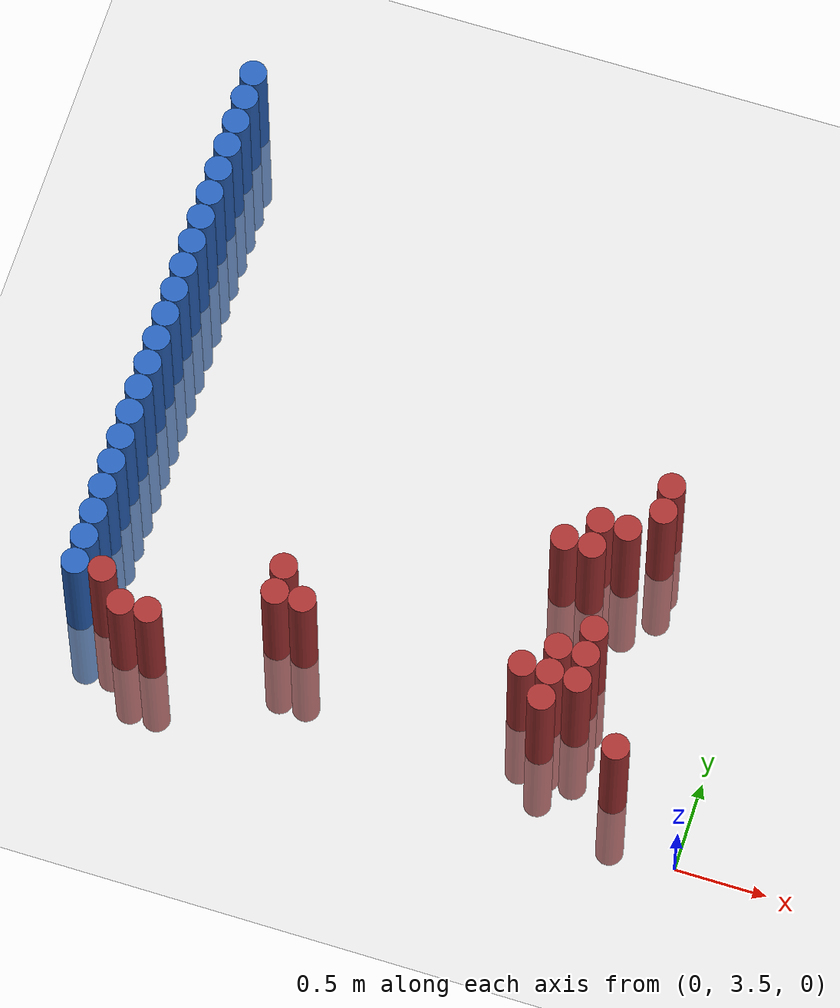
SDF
<sdf version="1.6">
 <world name="default">
  <model name="ground_plane">
   <static>1</static>
   <link name="link">
    <collision name="collision">
     <geometry><plane><normal>0 0 1</normal><size>100 100</size></plane></geometry>
     <surface><friction><ode><mu>100</mu><mu2>50</mu2></ode></friction></surface>
    </collision>
    <visual name="visual">
     <cast_shadows>0</cast_shadows>
     <geometry><plane><normal>0 0 1</normal><size>100 100</size></plane></geometry>
     <material>
      <script><uri>file://media/materials/scripts/gazebo.material</uri><name>Gazebo/Grey</name></script>
     </material>
    </visual>
   </link>
  </model>
  <model name="unit_cylinder_167">
   <static>1</static>
   <pose>-3.425000 3.925000 0.000000 0.000000 0.000000 0.000000</pose>
   <link name="link">
    <inertial>
     <mass>1</mass>
     <inertia><ixx>0.145833</ixx><ixy>0</ixy><ixz>0</ixz><iyy>0.145833</iyy><iyz>0</iyz><izz>0.125</izz></inertia>
    </inertial>
    <collision name="collision">
     <geometry><cylinder><radius>0.075000</radius><length>1.5</length></cylinder></geometry>
    </collision>
    <visual name="visual">
     <geometry><cylinder><radius>0.075000</radius><length>1.5</length></cylinder></geometry>
     <material>
      <ambient>0.152000 0.379000 0.720000 1</ambient>
      <diffuse>0.152000 0.379000 0.720000 1</diffuse>
     </material>
     <material>
      <script><name>Gazebo/Grey</name><uri>file://media/materials/scripts/gazebo.material</uri></script>
     </material>
    </visual>
   </link>
  </model>
  <model name="unit_cylinder_169">
   <static>1</static>
   <pose>-3.425000 4.075000 0.000000 0.000000 0.000000 0.000000</pose>
   <link name="link">
    <inertial>
     <mass>1</mass>
     <inertia><ixx>0.145833</ixx><ixy>0</ixy><ixz>0</ixz><iyy>0.145833</iyy><iyz>0</iyz><izz>0.125</izz></inertia>
    </inertial>
    <collision name="collision">
     <geometry><cylinder><radius>0.075000</radius><length>1.5</length></cylinder></geometry>
    </collision>
    <visual name="visual">
     <geometry><cylinder><radius>0.075000</radius><length>1.5</length></cylinder></geometry>
     <material>
      <ambient>0.152000 0.379000 0.720000 1</ambient>
      <diffuse>0.152000 0.379000 0.720000 1</diffuse>
     </material>
     <material>
      <script><name>Gazebo/Grey</name><uri>file://media/materials/scripts/gazebo.material</uri></script>
     </material>
    </visual>
   </link>
  </model>
  <model name="unit_cylinder_171">
   <static>1</static>
   <pose>-3.425000 4.225000 0.000000 0.000000 0.000000 0.000000</pose>
   <link name="link">
    <inertial>
     <mass>1</mass>
     <inertia><ixx>0.145833</ixx><ixy>0</ixy><ixz>0</ixz><iyy>0.145833</iyy><iyz>0</iyz><izz>0.125</izz></inertia>
    </inertial>
    <collision name="collision">
     <geometry><cylinder><radius>0.075000</radius><length>1.5</length></cylinder></geometry>
    </collision>
    <visual name="visual">
     <geometry><cylinder><radius>0.075000</radius><length>1.5</length></cylinder></geometry>
     <material>
      <ambient>0.152000 0.379000 0.720000 1</ambient>
      <diffuse>0.152000 0.379000 0.720000 1</diffuse>
     </material>
     <material>
      <script><name>Gazebo/Grey</name><uri>file://media/materials/scripts/gazebo.material</uri></script>
     </material>
    </visual>
   </link>
  </model>
  <model name="unit_cylinder_173">
   <static>1</static>
   <pose>-3.425000 4.375000 0.000000 0.000000 0.000000 0.000000</pose>
   <link name="link">
    <inertial>
     <mass>1</mass>
     <inertia><ixx>0.145833</ixx><ixy>0</ixy><ixz>0</ixz><iyy>0.145833</iyy><iyz>0</iyz><izz>0.125</izz></inertia>
    </inertial>
    <collision name="collision">
     <geometry><cylinder><radius>0.075000</radius><length>1.5</length></cylinder></geometry>
    </collision>
    <visual name="visual">
     <geometry><cylinder><radius>0.075000</radius><length>1.5</length></cylinder></geometry>
     <material>
      <ambient>0.152000 0.379000 0.720000 1</ambient>
      <diffuse>0.152000 0.379000 0.720000 1</diffuse>
     </material>
     <material>
      <script><name>Gazebo/Grey</name><uri>file://media/materials/scripts/gazebo.material</uri></script>
     </material>
    </visual>
   </link>
  </model>
  <model name="unit_cylinder_175">
   <static>1</static>
   <pose>-3.425000 4.525000 0.000000 0.000000 0.000000 0.000000</pose>
   <link name="link">
    <inertial>
     <mass>1</mass>
     <inertia><ixx>0.145833</ixx><ixy>0</ixy><ixz>0</ixz><iyy>0.145833</iyy><iyz>0</iyz><izz>0.125</izz></inertia>
    </inertial>
    <collision name="collision">
     <geometry><cylinder><radius>0.075000</radius><length>1.5</length></cylinder></geometry>
    </collision>
    <visual name="visual">
     <geometry><cylinder><radius>0.075000</radius><length>1.5</length></cylinder></geometry>
     <material>
      <ambient>0.152000 0.379000 0.720000 1</ambient>
      <diffuse>0.152000 0.379000 0.720000 1</diffuse>
     </material>
     <material>
      <script><name>Gazebo/Grey</name><uri>file://media/materials/scripts/gazebo.material</uri></script>
     </material>
    </visual>
   </link>
  </model>
  <model name="unit_cylinder_177">
   <static>1</static>
   <pose>-3.425000 4.675000 0.000000 0.000000 0.000000 0.000000</pose>
   <link name="link">
    <inertial>
     <mass>1</mass>
     <inertia><ixx>0.145833</ixx><ixy>0</ixy><ixz>0</ixz><iyy>0.145833</iyy><iyz>0</iyz><izz>0.125</izz></inertia>
    </inertial>
    <collision name="collision">
     <geometry><cylinder><radius>0.075000</radius><length>1.5</length></cylinder></geometry>
    </collision>
    <visual name="visual">
     <geometry><cylinder><radius>0.075000</radius><length>1.5</length></cylinder></geometry>
     <material>
      <ambient>0.152000 0.379000 0.720000 1</ambient>
      <diffuse>0.152000 0.379000 0.720000 1</diffuse>
     </material>
     <material>
      <script><name>Gazebo/Grey</name><uri>file://media/materials/scripts/gazebo.material</uri></script>
     </material>
    </visual>
   </link>
  </model>
  <model name="unit_cylinder_179">
   <static>1</static>
   <pose>-3.425000 4.825000 0.000000 0.000000 0.000000 0.000000</pose>
   <link name="link">
    <inertial>
     <mass>1</mass>
     <inertia><ixx>0.145833</ixx><ixy>0</ixy><ixz>0</ixz><iyy>0.145833</iyy><iyz>0</iyz><izz>0.125</izz></inertia>
    </inertial>
    <collision name="collision">
     <geometry><cylinder><radius>0.075000</radius><length>1.5</length></cylinder></geometry>
    </collision>
    <visual name="visual">
     <geometry><cylinder><radius>0.075000</radius><length>1.5</length></cylinder></geometry>
     <material>
      <ambient>0.152000 0.379000 0.720000 1</ambient>
      <diffuse>0.152000 0.379000 0.720000 1</diffuse>
     </material>
     <material>
      <script><name>Gazebo/Grey</name><uri>file://media/materials/scripts/gazebo.material</uri></script>
     </material>
    </visual>
   </link>
  </model>
  <model name="unit_cylinder_181">
   <static>1</static>
   <pose>-3.425000 4.975000 0.000000 0.000000 0.000000 0.000000</pose>
   <link name="link">
    <inertial>
     <mass>1</mass>
     <inertia><ixx>0.145833</ixx><ixy>0</ixy><ixz>0</ixz><iyy>0.145833</iyy><iyz>0</iyz><izz>0.125</izz></inertia>
    </inertial>
    <collision name="collision">
     <geometry><cylinder><radius>0.075000</radius><length>1.5</length></cylinder></geometry>
    </collision>
    <visual name="visual">
     <geometry><cylinder><radius>0.075000</radius><length>1.5</length></cylinder></geometry>
     <material>
      <ambient>0.152000 0.379000 0.720000 1</ambient>
      <diffuse>0.152000 0.379000 0.720000 1</diffuse>
     </material>
     <material>
      <script><name>Gazebo/Grey</name><uri>file://media/materials/scripts/gazebo.material</uri></script>
     </material>
    </visual>
   </link>
  </model>
  <model name="unit_cylinder_183">
   <static>1</static>
   <pose>-3.425000 5.125000 0.000000 0.000000 0.000000 0.000000</pose>
   <link name="link">
    <inertial>
     <mass>1</mass>
     <inertia><ixx>0.145833</ixx><ixy>0</ixy><ixz>0</ixz><iyy>0.145833</iyy><iyz>0</iyz><izz>0.125</izz></inertia>
    </inertial>
    <collision name="collision">
     <geometry><cylinder><radius>0.075000</radius><length>1.5</length></cylinder></geometry>
    </collision>
    <visual name="visual">
     <geometry><cylinder><radius>0.075000</radius><length>1.5</length></cylinder></geometry>
     <material>
      <ambient>0.152000 0.379000 0.720000 1</ambient>
      <diffuse>0.152000 0.379000 0.720000 1</diffuse>
     </material>
     <material>
      <script><name>Gazebo/Grey</name><uri>file://media/materials/scripts/gazebo.material</uri></script>
     </material>
    </visual>
   </link>
  </model>
  <model name="unit_cylinder_185">
   <static>1</static>
   <pose>-3.425000 5.275000 0.000000 0.000000 0.000000 0.000000</pose>
   <link name="link">
    <inertial>
     <mass>1</mass>
     <inertia><ixx>0.145833</ixx><ixy>0</ixy><ixz>0</ixz><iyy>0.145833</iyy><iyz>0</iyz><izz>0.125</izz></inertia>
    </inertial>
    <collision name="collision">
     <geometry><cylinder><radius>0.075000</radius><length>1.5</length></cylinder></geometry>
    </collision>
    <visual name="visual">
     <geometry><cylinder><radius>0.075000</radius><length>1.5</length></cylinder></geometry>
     <material>
      <ambient>0.152000 0.379000 0.720000 1</ambient>
      <diffuse>0.152000 0.379000 0.720000 1</diffuse>
     </material>
     <material>
      <script><name>Gazebo/Grey</name><uri>file://media/materials/scripts/gazebo.material</uri></script>
     </material>
    </visual>
   </link>
  </model>
  <model name="unit_cylinder_187">
   <static>1</static>
   <pose>-3.425000 5.425000 0.000000 0.000000 0.000000 0.000000</pose>
   <link name="link">
    <inertial>
     <mass>1</mass>
     <inertia><ixx>0.145833</ixx><ixy>0</ixy><ixz>0</ixz><iyy>0.145833</iyy><iyz>0</iyz><izz>0.125</izz></inertia>
    </inertial>
    <collision name="collision">
     <geometry><cylinder><radius>0.075000</radius><length>1.5</length></cylinder></geometry>
    </collision>
    <visual name="visual">
     <geometry><cylinder><radius>0.075000</radius><length>1.5</length></cylinder></geometry>
     <material>
      <ambient>0.152000 0.379000 0.720000 1</ambient>
      <diffuse>0.152000 0.379000 0.720000 1</diffuse>
     </material>
     <material>
      <script><name>Gazebo/Grey</name><uri>file://media/materials/scripts/gazebo.material</uri></script>
     </material>
    </visual>
   </link>
  </model>
  <model name="unit_cylinder_189">
   <static>1</static>
   <pose>-3.425000 5.575000 0.000000 0.000000 0.000000 0.000000</pose>
   <link name="link">
    <inertial>
     <mass>1</mass>
     <inertia><ixx>0.145833</ixx><ixy>0</ixy><ixz>0</ixz><iyy>0.145833</iyy><iyz>0</iyz><izz>0.125</izz></inertia>
    </inertial>
    <collision name="collision">
     <geometry><cylinder><radius>0.075000</radius><length>1.5</length></cylinder></geometry>
    </collision>
    <visual name="visual">
     <geometry><cylinder><radius>0.075000</radius><length>1.5</length></cylinder></geometry>
     <material>
      <ambient>0.152000 0.379000 0.720000 1</ambient>
      <diffuse>0.152000 0.379000 0.720000 1</diffuse>
     </material>
     <material>
      <script><name>Gazebo/Grey</name><uri>file://media/materials/scripts/gazebo.material</uri></script>
     </material>
    </visual>
   </link>
  </model>
  <model name="unit_cylinder_191">
   <static>1</static>
   <pose>-3.425000 5.725000 0.000000 0.000000 0.000000 0.000000</pose>
   <link name="link">
    <inertial>
     <mass>1</mass>
     <inertia><ixx>0.145833</ixx><ixy>0</ixy><ixz>0</ixz><iyy>0.145833</iyy><iyz>0</iyz><izz>0.125</izz></inertia>
    </inertial>
    <collision name="collision">
     <geometry><cylinder><radius>0.075000</radius><length>1.5</length></cylinder></geometry>
    </collision>
    <visual name="visual">
     <geometry><cylinder><radius>0.075000</radius><length>1.5</length></cylinder></geometry>
     <material>
      <ambient>0.152000 0.379000 0.720000 1</ambient>
      <diffuse>0.152000 0.379000 0.720000 1</diffuse>
     </material>
     <material>
      <script><name>Gazebo/Grey</name><uri>file://media/materials/scripts/gazebo.material</uri></script>
     </material>
    </visual>
   </link>
  </model>
  <model name="unit_cylinder_193">
   <static>1</static>
   <pose>-3.425000 5.875000 0.000000 0.000000 0.000000 0.000000</pose>
   <link name="link">
    <inertial>
     <mass>1</mass>
     <inertia><ixx>0.145833</ixx><ixy>0</ixy><ixz>0</ixz><iyy>0.145833</iyy><iyz>0</iyz><izz>0.125</izz></inertia>
    </inertial>
    <collision name="collision">
     <geometry><cylinder><radius>0.075000</radius><length>1.5</length></cylinder></geometry>
    </collision>
    <visual name="visual">
     <geometry><cylinder><radius>0.075000</radius><length>1.5</length></cylinder></geometry>
     <material>
      <ambient>0.152000 0.379000 0.720000 1</ambient>
      <diffuse>0.152000 0.379000 0.720000 1</diffuse>
     </material>
     <material>
      <script><name>Gazebo/Grey</name><uri>file://media/materials/scripts/gazebo.material</uri></script>
     </material>
    </visual>
   </link>
  </model>
  <model name="unit_cylinder_195">
   <static>1</static>
   <pose>-3.425000 6.025000 0.000000 0.000000 0.000000 0.000000</pose>
   <link name="link">
    <inertial>
     <mass>1</mass>
     <inertia><ixx>0.145833</ixx><ixy>0</ixy><ixz>0</ixz><iyy>0.145833</iyy><iyz>0</iyz><izz>0.125</izz></inertia>
    </inertial>
    <collision name="collision">
     <geometry><cylinder><radius>0.075000</radius><length>1.5</length></cylinder></geometry>
    </collision>
    <visual name="visual">
     <geometry><cylinder><radius>0.075000</radius><length>1.5</length></cylinder></geometry>
     <material>
      <ambient>0.152000 0.379000 0.720000 1</ambient>
      <diffuse>0.152000 0.379000 0.720000 1</diffuse>
     </material>
     <material>
      <script><name>Gazebo/Grey</name><uri>file://media/materials/scripts/gazebo.material</uri></script>
     </material>
    </visual>
   </link>
  </model>
  <model name="unit_cylinder_197">
   <static>1</static>
   <pose>-3.425000 6.175000 0.000000 0.000000 0.000000 0.000000</pose>
   <link name="link">
    <inertial>
     <mass>1</mass>
     <inertia><ixx>0.145833</ixx><ixy>0</ixy><ixz>0</ixz><iyy>0.145833</iyy><iyz>0</iyz><izz>0.125</izz></inertia>
    </inertial>
    <collision name="collision">
     <geometry><cylinder><radius>0.075000</radius><length>1.5</length></cylinder></geometry>
    </collision>
    <visual name="visual">
     <geometry><cylinder><radius>0.075000</radius><length>1.5</length></cylinder></geometry>
     <material>
      <ambient>0.152000 0.379000 0.720000 1</ambient>
      <diffuse>0.152000 0.379000 0.720000 1</diffuse>
     </material>
     <material>
      <script><name>Gazebo/Grey</name><uri>file://media/materials/scripts/gazebo.material</uri></script>
     </material>
    </visual>
   </link>
  </model>
  <model name="unit_cylinder_199">
   <static>1</static>
   <pose>-3.425000 6.325000 0.000000 0.000000 0.000000 0.000000</pose>
   <link name="link">
    <inertial>
     <mass>1</mass>
     <inertia><ixx>0.145833</ixx><ixy>0</ixy><ixz>0</ixz><iyy>0.145833</iyy><iyz>0</iyz><izz>0.125</izz></inertia>
    </inertial>
    <collision name="collision">
     <geometry><cylinder><radius>0.075000</radius><length>1.5</length></cylinder></geometry>
    </collision>
    <visual name="visual">
     <geometry><cylinder><radius>0.075000</radius><length>1.5</length></cylinder></geometry>
     <material>
      <ambient>0.152000 0.379000 0.720000 1</ambient>
      <diffuse>0.152000 0.379000 0.720000 1</diffuse>
     </material>
     <material>
      <script><name>Gazebo/Grey</name><uri>file://media/materials/scripts/gazebo.material</uri></script>
     </material>
    </visual>
   </link>
  </model>
  <model name="unit_cylinder_201">
   <static>1</static>
   <pose>-3.425000 6.475000 0.000000 0.000000 0.000000 0.000000</pose>
   <link name="link">
    <inertial>
     <mass>1</mass>
     <inertia><ixx>0.145833</ixx><ixy>0</ixy><ixz>0</ixz><iyy>0.145833</iyy><iyz>0</iyz><izz>0.125</izz></inertia>
    </inertial>
    <collision name="collision">
     <geometry><cylinder><radius>0.075000</radius><length>1.5</length></cylinder></geometry>
    </collision>
    <visual name="visual">
     <geometry><cylinder><radius>0.075000</radius><length>1.5</length></cylinder></geometry>
     <material>
      <ambient>0.152000 0.379000 0.720000 1</ambient>
      <diffuse>0.152000 0.379000 0.720000 1</diffuse>
     </material>
     <material>
      <script><name>Gazebo/Grey</name><uri>file://media/materials/scripts/gazebo.material</uri></script>
     </material>
    </visual>
   </link>
  </model>
  <model name="unit_cylinder_203">
   <static>1</static>
   <pose>-3.425000 6.625000 0.000000 0.000000 0.000000 0.000000</pose>
   <link name="link">
    <inertial>
     <mass>1</mass>
     <inertia><ixx>0.145833</ixx><ixy>0</ixy><ixz>0</ixz><iyy>0.145833</iyy><iyz>0</iyz><izz>0.125</izz></inertia>
    </inertial>
    <collision name="collision">
     <geometry><cylinder><radius>0.075000</radius><length>1.5</length></cylinder></geometry>
    </collision>
    <visual name="visual">
     <geometry><cylinder><radius>0.075000</radius><length>1.5</length></cylinder></geometry>
     <material>
      <ambient>0.152000 0.379000 0.720000 1</ambient>
      <diffuse>0.152000 0.379000 0.720000 1</diffuse>
     </material>
     <material>
      <script><name>Gazebo/Grey</name><uri>file://media/materials/scripts/gazebo.material</uri></script>
     </material>
    </visual>
   </link>
  </model>
  <model name="unit_cylinder_205">
   <static>1</static>
   <pose>-3.425000 6.775000 0.000000 0.000000 0.000000 0.000000</pose>
   <link name="link">
    <inertial>
     <mass>1</mass>
     <inertia><ixx>0.145833</ixx><ixy>0</ixy><ixz>0</ixz><iyy>0.145833</iyy><iyz>0</iyz><izz>0.125</izz></inertia>
    </inertial>
    <collision name="collision">
     <geometry><cylinder><radius>0.075000</radius><length>1.5</length></cylinder></geometry>
    </collision>
    <visual name="visual">
     <geometry><cylinder><radius>0.075000</radius><length>1.5</length></cylinder></geometry>
     <material>
      <ambient>0.152000 0.379000 0.720000 1</ambient>
      <diffuse>0.152000 0.379000 0.720000 1</diffuse>
     </material>
     <material>
      <script><name>Gazebo/Grey</name><uri>file://media/materials/scripts/gazebo.material</uri></script>
     </material>
    </visual>
   </link>
  </model>
  <model name="unit_cylinder_207">
   <static>1</static>
   <pose>-3.425000 6.925000 0.000000 0.000000 0.000000 0.000000</pose>
   <link name="link">
    <inertial>
     <mass>1</mass>
     <inertia><ixx>0.145833</ixx><ixy>0</ixy><ixz>0</ixz><iyy>0.145833</iyy><iyz>0</iyz><izz>0.125</izz></inertia>
    </inertial>
    <collision name="collision">
     <geometry><cylinder><radius>0.075000</radius><length>1.5</length></cylinder></geometry>
    </collision>
    <visual name="visual">
     <geometry><cylinder><radius>0.075000</radius><length>1.5</length></cylinder></geometry>
     <material>
      <ambient>0.152000 0.379000 0.720000 1</ambient>
      <diffuse>0.152000 0.379000 0.720000 1</diffuse>
     </material>
     <material>
      <script><name>Gazebo/Grey</name><uri>file://media/materials/scripts/gazebo.material</uri></script>
     </material>
    </visual>
   </link>
  </model>
  <model name="unit_cylinder_247">
   <static>1</static>
   <pose>-3.425000 3.925000 0.000000 0.000000 0.000000 0.000000</pose>
   <link name="link">
    <inertial>
     <mass>1</mass>
     <inertia><ixx>0.145833</ixx><ixy>0</ixy><ixz>0</ixz><iyy>0.145833</iyy><iyz>0</iyz><izz>0.125</izz></inertia>
    </inertial>
    <collision name="collision">
     <geometry><cylinder><radius>0.075000</radius><length>1.5</length></cylinder></geometry>
    </collision>
    <visual name="visual">
     <geometry><cylinder><radius>0.075000</radius><length>1.5</length></cylinder></geometry>
     <material>
      <ambient>0.152000 0.379000 0.720000 1</ambient>
      <diffuse>0.152000 0.379000 0.720000 1</diffuse>
     </material>
     <material>
      <script><name>Gazebo/Grey</name><uri>file://media/materials/scripts/gazebo.material</uri></script>
     </material>
    </visual>
   </link>
  </model>
  <model name="unit_cylinder_248">
   <static>1</static>
   <pose>-3.425000 4.075000 0.000000 0.000000 0.000000 0.000000</pose>
   <link name="link">
    <inertial>
     <mass>1</mass>
     <inertia><ixx>0.145833</ixx><ixy>0</ixy><ixz>0</ixz><iyy>0.145833</iyy><iyz>0</iyz><izz>0.125</izz></inertia>
    </inertial>
    <collision name="collision">
     <geometry><cylinder><radius>0.075000</radius><length>1.5</length></cylinder></geometry>
    </collision>
    <visual name="visual">
     <geometry><cylinder><radius>0.075000</radius><length>1.5</length></cylinder></geometry>
     <material>
      <ambient>0.152000 0.379000 0.720000 1</ambient>
      <diffuse>0.152000 0.379000 0.720000 1</diffuse>
     </material>
     <material>
      <script><name>Gazebo/Grey</name><uri>file://media/materials/scripts/gazebo.material</uri></script>
     </material>
    </visual>
   </link>
  </model>
  <model name="unit_cylinder_249">
   <static>1</static>
   <pose>-3.425000 4.225000 0.000000 0.000000 0.000000 0.000000</pose>
   <link name="link">
    <inertial>
     <mass>1</mass>
     <inertia><ixx>0.145833</ixx><ixy>0</ixy><ixz>0</ixz><iyy>0.145833</iyy><iyz>0</iyz><izz>0.125</izz></inertia>
    </inertial>
    <collision name="collision">
     <geometry><cylinder><radius>0.075000</radius><length>1.5</length></cylinder></geometry>
    </collision>
    <visual name="visual">
     <geometry><cylinder><radius>0.075000</radius><length>1.5</length></cylinder></geometry>
     <material>
      <ambient>0.152000 0.379000 0.720000 1</ambient>
      <diffuse>0.152000 0.379000 0.720000 1</diffuse>
     </material>
     <material>
      <script><name>Gazebo/Grey</name><uri>file://media/materials/scripts/gazebo.material</uri></script>
     </material>
    </visual>
   </link>
  </model>
  <model name="unit_cylinder_250">
   <static>1</static>
   <pose>-3.425000 4.375000 0.000000 0.000000 0.000000 0.000000</pose>
   <link name="link">
    <inertial>
     <mass>1</mass>
     <inertia><ixx>0.145833</ixx><ixy>0</ixy><ixz>0</ixz><iyy>0.145833</iyy><iyz>0</iyz><izz>0.125</izz></inertia>
    </inertial>
    <collision name="collision">
     <geometry><cylinder><radius>0.075000</radius><length>1.5</length></cylinder></geometry>
    </collision>
    <visual name="visual">
     <geometry><cylinder><radius>0.075000</radius><length>1.5</length></cylinder></geometry>
     <material>
      <ambient>0.152000 0.379000 0.720000 1</ambient>
      <diffuse>0.152000 0.379000 0.720000 1</diffuse>
     </material>
     <material>
      <script><name>Gazebo/Grey</name><uri>file://media/materials/scripts/gazebo.material</uri></script>
     </material>
    </visual>
   </link>
  </model>
  <model name="unit_cylinder_251">
   <static>1</static>
   <pose>-3.425000 4.525000 0.000000 0.000000 0.000000 0.000000</pose>
   <link name="link">
    <inertial>
     <mass>1</mass>
     <inertia><ixx>0.145833</ixx><ixy>0</ixy><ixz>0</ixz><iyy>0.145833</iyy><iyz>0</iyz><izz>0.125</izz></inertia>
    </inertial>
    <collision name="collision">
     <geometry><cylinder><radius>0.075000</radius><length>1.5</length></cylinder></geometry>
    </collision>
    <visual name="visual">
     <geometry><cylinder><radius>0.075000</radius><length>1.5</length></cylinder></geometry>
     <material>
      <ambient>0.152000 0.379000 0.720000 1</ambient>
      <diffuse>0.152000 0.379000 0.720000 1</diffuse>
     </material>
     <material>
      <script><name>Gazebo/Grey</name><uri>file://media/materials/scripts/gazebo.material</uri></script>
     </material>
    </visual>
   </link>
  </model>
  <model name="unit_cylinder_252">
   <static>1</static>
   <pose>-3.425000 4.675000 0.000000 0.000000 0.000000 0.000000</pose>
   <link name="link">
    <inertial>
     <mass>1</mass>
     <inertia><ixx>0.145833</ixx><ixy>0</ixy><ixz>0</ixz><iyy>0.145833</iyy><iyz>0</iyz><izz>0.125</izz></inertia>
    </inertial>
    <collision name="collision">
     <geometry><cylinder><radius>0.075000</radius><length>1.5</length></cylinder></geometry>
    </collision>
    <visual name="visual">
     <geometry><cylinder><radius>0.075000</radius><length>1.5</length></cylinder></geometry>
     <material>
      <ambient>0.152000 0.379000 0.720000 1</ambient>
      <diffuse>0.152000 0.379000 0.720000 1</diffuse>
     </material>
     <material>
      <script><name>Gazebo/Grey</name><uri>file://media/materials/scripts/gazebo.material</uri></script>
     </material>
    </visual>
   </link>
  </model>
  <model name="unit_cylinder_253">
   <static>1</static>
   <pose>-3.425000 4.825000 0.000000 0.000000 0.000000 0.000000</pose>
   <link name="link">
    <inertial>
     <mass>1</mass>
     <inertia><ixx>0.145833</ixx><ixy>0</ixy><ixz>0</ixz><iyy>0.145833</iyy><iyz>0</iyz><izz>0.125</izz></inertia>
    </inertial>
    <collision name="collision">
     <geometry><cylinder><radius>0.075000</radius><length>1.5</length></cylinder></geometry>
    </collision>
    <visual name="visual">
     <geometry><cylinder><radius>0.075000</radius><length>1.5</length></cylinder></geometry>
     <material>
      <ambient>0.152000 0.379000 0.720000 1</ambient>
      <diffuse>0.152000 0.379000 0.720000 1</diffuse>
     </material>
     <material>
      <script><name>Gazebo/Grey</name><uri>file://media/materials/scripts/gazebo.material</uri></script>
     </material>
    </visual>
   </link>
  </model>
  <model name="unit_cylinder_254">
   <static>1</static>
   <pose>-3.425000 4.975000 0.000000 0.000000 0.000000 0.000000</pose>
   <link name="link">
    <inertial>
     <mass>1</mass>
     <inertia><ixx>0.145833</ixx><ixy>0</ixy><ixz>0</ixz><iyy>0.145833</iyy><iyz>0</iyz><izz>0.125</izz></inertia>
    </inertial>
    <collision name="collision">
     <geometry><cylinder><radius>0.075000</radius><length>1.5</length></cylinder></geometry>
    </collision>
    <visual name="visual">
     <geometry><cylinder><radius>0.075000</radius><length>1.5</length></cylinder></geometry>
     <material>
      <ambient>0.152000 0.379000 0.720000 1</ambient>
      <diffuse>0.152000 0.379000 0.720000 1</diffuse>
     </material>
     <material>
      <script><name>Gazebo/Grey</name><uri>file://media/materials/scripts/gazebo.material</uri></script>
     </material>
    </visual>
   </link>
  </model>
  <model name="unit_cylinder_255">
   <static>1</static>
   <pose>-3.425000 5.125000 0.000000 0.000000 0.000000 0.000000</pose>
   <link name="link">
    <inertial>
     <mass>1</mass>
     <inertia><ixx>0.145833</ixx><ixy>0</ixy><ixz>0</ixz><iyy>0.145833</iyy><iyz>0</iyz><izz>0.125</izz></inertia>
    </inertial>
    <collision name="collision">
     <geometry><cylinder><radius>0.075000</radius><length>1.5</length></cylinder></geometry>
    </collision>
    <visual name="visual">
     <geometry><cylinder><radius>0.075000</radius><length>1.5</length></cylinder></geometry>
     <material>
      <ambient>0.152000 0.379000 0.720000 1</ambient>
      <diffuse>0.152000 0.379000 0.720000 1</diffuse>
     </material>
     <material>
      <script><name>Gazebo/Grey</name><uri>file://media/materials/scripts/gazebo.material</uri></script>
     </material>
    </visual>
   </link>
  </model>
  <model name="unit_cylinder_256">
   <static>1</static>
   <pose>-3.425000 5.275000 0.000000 0.000000 0.000000 0.000000</pose>
   <link name="link">
    <inertial>
     <mass>1</mass>
     <inertia><ixx>0.145833</ixx><ixy>0</ixy><ixz>0</ixz><iyy>0.145833</iyy><iyz>0</iyz><izz>0.125</izz></inertia>
    </inertial>
    <collision name="collision">
     <geometry><cylinder><radius>0.075000</radius><length>1.5</length></cylinder></geometry>
    </collision>
    <visual name="visual">
     <geometry><cylinder><radius>0.075000</radius><length>1.5</length></cylinder></geometry>
     <material>
      <ambient>0.152000 0.379000 0.720000 1</ambient>
      <diffuse>0.152000 0.379000 0.720000 1</diffuse>
     </material>
     <material>
      <script><name>Gazebo/Grey</name><uri>file://media/materials/scripts/gazebo.material</uri></script>
     </material>
    </visual>
   </link>
  </model>
  <model name="unit_cylinder_257">
   <static>1</static>
   <pose>-3.425000 5.425000 0.000000 0.000000 0.000000 0.000000</pose>
   <link name="link">
    <inertial>
     <mass>1</mass>
     <inertia><ixx>0.145833</ixx><ixy>0</ixy><ixz>0</ixz><iyy>0.145833</iyy><iyz>0</iyz><izz>0.125</izz></inertia>
    </inertial>
    <collision name="collision">
     <geometry><cylinder><radius>0.075000</radius><length>1.5</length></cylinder></geometry>
    </collision>
    <visual name="visual">
     <geometry><cylinder><radius>0.075000</radius><length>1.5</length></cylinder></geometry>
     <material>
      <ambient>0.152000 0.379000 0.720000 1</ambient>
      <diffuse>0.152000 0.379000 0.720000 1</diffuse>
     </material>
     <material>
      <script><name>Gazebo/Grey</name><uri>file://media/materials/scripts/gazebo.material</uri></script>
     </material>
    </visual>
   </link>
  </model>
  <model name="unit_cylinder_274">
   <static>1</static>
   <pose>-3.275000 3.925000 0.000000 0.000000 0.000000 0.000000</pose>
   <link name="link">
    <inertial>
     <mass>1</mass>
     <inertia><ixx>0.145833</ixx><ixy>0</ixy><ixz>0</ixz><iyy>0.145833</iyy><iyz>0</iyz><izz>0.125</izz></inertia>
    </inertial>
    <collision name="collision">
     <geometry><cylinder><radius>0.075000</radius><length>1.5</length></cylinder></geometry>
    </collision>
    <visual name="visual">
     <geometry><cylinder><radius>0.075000</radius><length>1.5</length></cylinder></geometry>
     <material>
      <ambient>0.648000 0.192000 0.192000 1</ambient>
      <diffuse>0.648000 0.192000 0.192000 1</diffuse>
     </material>
     <material>
      <script><name>Gazebo/Grey</name><uri>file://media/materials/scripts/gazebo.material</uri></script>
     </material>
    </visual>
   </link>
  </model>
  <model name="unit_cylinder_290">
   <static>1</static>
   <pose>-3.125000 3.775000 0.000000 0.000000 0.000000 0.000000</pose>
   <link name="link">
    <inertial>
     <mass>1</mass>
     <inertia><ixx>0.145833</ixx><ixy>0</ixy><ixz>0</ixz><iyy>0.145833</iyy><iyz>0</iyz><izz>0.125</izz></inertia>
    </inertial>
    <collision name="collision">
     <geometry><cylinder><radius>0.075000</radius><length>1.5</length></cylinder></geometry>
    </collision>
    <visual name="visual">
     <geometry><cylinder><radius>0.075000</radius><length>1.5</length></cylinder></geometry>
     <material>
      <ambient>0.648000 0.192000 0.192000 1</ambient>
      <diffuse>0.648000 0.192000 0.192000 1</diffuse>
     </material>
     <material>
      <script><name>Gazebo/Grey</name><uri>file://media/materials/scripts/gazebo.material</uri></script>
     </material>
    </visual>
   </link>
  </model>
  <model name="unit_cylinder_299">
   <static>1</static>
   <pose>-2.975000 3.775000 0.000000 0.000000 0.000000 0.000000</pose>
   <link name="link">
    <inertial>
     <mass>1</mass>
     <inertia><ixx>0.145833</ixx><ixy>0</ixy><ixz>0</ixz><iyy>0.145833</iyy><iyz>0</iyz><izz>0.125</izz></inertia>
    </inertial>
    <collision name="collision">
     <geometry><cylinder><radius>0.075000</radius><length>1.5</length></cylinder></geometry>
    </collision>
    <visual name="visual">
     <geometry><cylinder><radius>0.075000</radius><length>1.5</length></cylinder></geometry>
     <material>
      <ambient>0.648000 0.192000 0.192000 1</ambient>
      <diffuse>0.648000 0.192000 0.192000 1</diffuse>
     </material>
     <material>
      <script><name>Gazebo/Grey</name><uri>file://media/materials/scripts/gazebo.material</uri></script>
     </material>
    </visual>
   </link>
  </model>
  <model name="unit_cylinder_312">
   <static>1</static>
   <pose>-2.375000 4.075000 0.000000 0.000000 0.000000 0.000000</pose>
   <link name="link">
    <inertial>
     <mass>1</mass>
     <inertia><ixx>0.145833</ixx><ixy>0</ixy><ixz>0</ixz><iyy>0.145833</iyy><iyz>0</iyz><izz>0.125</izz></inertia>
    </inertial>
    <collision name="collision">
     <geometry><cylinder><radius>0.075000</radius><length>1.5</length></cylinder></geometry>
    </collision>
    <visual name="visual">
     <geometry><cylinder><radius>0.075000</radius><length>1.5</length></cylinder></geometry>
     <material>
      <ambient>0.648000 0.192000 0.192000 1</ambient>
      <diffuse>0.648000 0.192000 0.192000 1</diffuse>
     </material>
     <material>
      <script><name>Gazebo/Grey</name><uri>file://media/materials/scripts/gazebo.material</uri></script>
     </material>
    </visual>
   </link>
  </model>
  <model name="unit_cylinder_313">
   <static>1</static>
   <pose>-2.375000 4.225000 0.000000 0.000000 0.000000 0.000000</pose>
   <link name="link">
    <inertial>
     <mass>1</mass>
     <inertia><ixx>0.145833</ixx><ixy>0</ixy><ixz>0</ixz><iyy>0.145833</iyy><iyz>0</iyz><izz>0.125</izz></inertia>
    </inertial>
    <collision name="collision">
     <geometry><cylinder><radius>0.075000</radius><length>1.5</length></cylinder></geometry>
    </collision>
    <visual name="visual">
     <geometry><cylinder><radius>0.075000</radius><length>1.5</length></cylinder></geometry>
     <material>
      <ambient>0.648000 0.192000 0.192000 1</ambient>
      <diffuse>0.648000 0.192000 0.192000 1</diffuse>
     </material>
     <material>
      <script><name>Gazebo/Grey</name><uri>file://media/materials/scripts/gazebo.material</uri></script>
     </material>
    </visual>
   </link>
  </model>
  <model name="unit_cylinder_316">
   <static>1</static>
   <pose>-2.225000 4.075000 0.000000 0.000000 0.000000 0.000000</pose>
   <link name="link">
    <inertial>
     <mass>1</mass>
     <inertia><ixx>0.145833</ixx><ixy>0</ixy><ixz>0</ixz><iyy>0.145833</iyy><iyz>0</iyz><izz>0.125</izz></inertia>
    </inertial>
    <collision name="collision">
     <geometry><cylinder><radius>0.075000</radius><length>1.5</length></cylinder></geometry>
    </collision>
    <visual name="visual">
     <geometry><cylinder><radius>0.075000</radius><length>1.5</length></cylinder></geometry>
     <material>
      <ambient>0.648000 0.192000 0.192000 1</ambient>
      <diffuse>0.648000 0.192000 0.192000 1</diffuse>
     </material>
     <material>
      <script><name>Gazebo/Grey</name><uri>file://media/materials/scripts/gazebo.material</uri></script>
     </material>
    </visual>
   </link>
  </model>
  <model name="unit_cylinder_380">
   <static>1</static>
   <pose>-1.025000 4.075000 0.000000 0.000000 0.000000 0.000000</pose>
   <link name="link">
    <inertial>
     <mass>1</mass>
     <inertia><ixx>0.145833</ixx><ixy>0</ixy><ixz>0</ixz><iyy>0.145833</iyy><iyz>0</iyz><izz>0.125</izz></inertia>
    </inertial>
    <collision name="collision">
     <geometry><cylinder><radius>0.075000</radius><length>1.5</length></cylinder></geometry>
    </collision>
    <visual name="visual">
     <geometry><cylinder><radius>0.075000</radius><length>1.5</length></cylinder></geometry>
     <material>
      <ambient>0.648000 0.192000 0.192000 1</ambient>
      <diffuse>0.648000 0.192000 0.192000 1</diffuse>
     </material>
     <material>
      <script><name>Gazebo/Grey</name><uri>file://media/materials/scripts/gazebo.material</uri></script>
     </material>
    </visual>
   </link>
  </model>
  <model name="unit_cylinder_381">
   <static>1</static>
   <pose>-1.025000 4.825000 0.000000 0.000000 0.000000 0.000000</pose>
   <link name="link">
    <inertial>
     <mass>1</mass>
     <inertia><ixx>0.145833</ixx><ixy>0</ixy><ixz>0</ixz><iyy>0.145833</iyy><iyz>0</iyz><izz>0.125</izz></inertia>
    </inertial>
    <collision name="collision">
     <geometry><cylinder><radius>0.075000</radius><length>1.5</length></cylinder></geometry>
    </collision>
    <visual name="visual">
     <geometry><cylinder><radius>0.075000</radius><length>1.5</length></cylinder></geometry>
     <material>
      <ambient>0.648000 0.192000 0.192000 1</ambient>
      <diffuse>0.648000 0.192000 0.192000 1</diffuse>
     </material>
     <material>
      <script><name>Gazebo/Grey</name><uri>file://media/materials/scripts/gazebo.material</uri></script>
     </material>
    </visual>
   </link>
  </model>
  <model name="unit_cylinder_387">
   <static>1</static>
   <pose>-0.875000 3.925000 0.000000 0.000000 0.000000 0.000000</pose>
   <link name="link">
    <inertial>
     <mass>1</mass>
     <inertia><ixx>0.145833</ixx><ixy>0</ixy><ixz>0</ixz><iyy>0.145833</iyy><iyz>0</iyz><izz>0.125</izz></inertia>
    </inertial>
    <collision name="collision">
     <geometry><cylinder><radius>0.075000</radius><length>1.5</length></cylinder></geometry>
    </collision>
    <visual name="visual">
     <geometry><cylinder><radius>0.075000</radius><length>1.5</length></cylinder></geometry>
     <material>
      <ambient>0.648000 0.192000 0.192000 1</ambient>
      <diffuse>0.648000 0.192000 0.192000 1</diffuse>
     </material>
     <material>
      <script><name>Gazebo/Grey</name><uri>file://media/materials/scripts/gazebo.material</uri></script>
     </material>
    </visual>
   </link>
  </model>
  <model name="unit_cylinder_388">
   <static>1</static>
   <pose>-0.875000 4.075000 0.000000 0.000000 0.000000 0.000000</pose>
   <link name="link">
    <inertial>
     <mass>1</mass>
     <inertia><ixx>0.145833</ixx><ixy>0</ixy><ixz>0</ixz><iyy>0.145833</iyy><iyz>0</iyz><izz>0.125</izz></inertia>
    </inertial>
    <collision name="collision">
     <geometry><cylinder><radius>0.075000</radius><length>1.5</length></cylinder></geometry>
    </collision>
    <visual name="visual">
     <geometry><cylinder><radius>0.075000</radius><length>1.5</length></cylinder></geometry>
     <material>
      <ambient>0.648000 0.192000 0.192000 1</ambient>
      <diffuse>0.648000 0.192000 0.192000 1</diffuse>
     </material>
     <material>
      <script><name>Gazebo/Grey</name><uri>file://media/materials/scripts/gazebo.material</uri></script>
     </material>
    </visual>
   </link>
  </model>
  <model name="unit_cylinder_389">
   <static>1</static>
   <pose>-0.875000 4.225000 0.000000 0.000000 0.000000 0.000000</pose>
   <link name="link">
    <inertial>
     <mass>1</mass>
     <inertia><ixx>0.145833</ixx><ixy>0</ixy><ixz>0</ixz><iyy>0.145833</iyy><iyz>0</iyz><izz>0.125</izz></inertia>
    </inertial>
    <collision name="collision">
     <geometry><cylinder><radius>0.075000</radius><length>1.5</length></cylinder></geometry>
    </collision>
    <visual name="visual">
     <geometry><cylinder><radius>0.075000</radius><length>1.5</length></cylinder></geometry>
     <material>
      <ambient>0.648000 0.192000 0.192000 1</ambient>
      <diffuse>0.648000 0.192000 0.192000 1</diffuse>
     </material>
     <material>
      <script><name>Gazebo/Grey</name><uri>file://media/materials/scripts/gazebo.material</uri></script>
     </material>
    </visual>
   </link>
  </model>
  <model name="unit_cylinder_390">
   <static>1</static>
   <pose>-0.875000 4.825000 0.000000 0.000000 0.000000 0.000000</pose>
   <link name="link">
    <inertial>
     <mass>1</mass>
     <inertia><ixx>0.145833</ixx><ixy>0</ixy><ixz>0</ixz><iyy>0.145833</iyy><iyz>0</iyz><izz>0.125</izz></inertia>
    </inertial>
    <collision name="collision">
     <geometry><cylinder><radius>0.075000</radius><length>1.5</length></cylinder></geometry>
    </collision>
    <visual name="visual">
     <geometry><cylinder><radius>0.075000</radius><length>1.5</length></cylinder></geometry>
     <material>
      <ambient>0.648000 0.192000 0.192000 1</ambient>
      <diffuse>0.648000 0.192000 0.192000 1</diffuse>
     </material>
     <material>
      <script><name>Gazebo/Grey</name><uri>file://media/materials/scripts/gazebo.material</uri></script>
     </material>
    </visual>
   </link>
  </model>
  <model name="unit_cylinder_391">
   <static>1</static>
   <pose>-0.875000 4.975000 0.000000 0.000000 0.000000 0.000000</pose>
   <link name="link">
    <inertial>
     <mass>1</mass>
     <inertia><ixx>0.145833</ixx><ixy>0</ixy><ixz>0</ixz><iyy>0.145833</iyy><iyz>0</iyz><izz>0.125</izz></inertia>
    </inertial>
    <collision name="collision">
     <geometry><cylinder><radius>0.075000</radius><length>1.5</length></cylinder></geometry>
    </collision>
    <visual name="visual">
     <geometry><cylinder><radius>0.075000</radius><length>1.5</length></cylinder></geometry>
     <material>
      <ambient>0.648000 0.192000 0.192000 1</ambient>
      <diffuse>0.648000 0.192000 0.192000 1</diffuse>
     </material>
     <material>
      <script><name>Gazebo/Grey</name><uri>file://media/materials/scripts/gazebo.material</uri></script>
     </material>
    </visual>
   </link>
  </model>
  <model name="unit_cylinder_392">
   <static>1</static>
   <pose>-0.725000 4.075000 0.000000 0.000000 0.000000 0.000000</pose>
   <link name="link">
    <inertial>
     <mass>1</mass>
     <inertia><ixx>0.145833</ixx><ixy>0</ixy><ixz>0</ixz><iyy>0.145833</iyy><iyz>0</iyz><izz>0.125</izz></inertia>
    </inertial>
    <collision name="collision">
     <geometry><cylinder><radius>0.075000</radius><length>1.5</length></cylinder></geometry>
    </collision>
    <visual name="visual">
     <geometry><cylinder><radius>0.075000</radius><length>1.5</length></cylinder></geometry>
     <material>
      <ambient>0.648000 0.192000 0.192000 1</ambient>
      <diffuse>0.648000 0.192000 0.192000 1</diffuse>
     </material>
     <material>
      <script><name>Gazebo/Grey</name><uri>file://media/materials/scripts/gazebo.material</uri></script>
     </material>
    </visual>
   </link>
  </model>
  <model name="unit_cylinder_393">
   <static>1</static>
   <pose>-0.725000 4.225000 0.000000 0.000000 0.000000 0.000000</pose>
   <link name="link">
    <inertial>
     <mass>1</mass>
     <inertia><ixx>0.145833</ixx><ixy>0</ixy><ixz>0</ixz><iyy>0.145833</iyy><iyz>0</iyz><izz>0.125</izz></inertia>
    </inertial>
    <collision name="collision">
     <geometry><cylinder><radius>0.075000</radius><length>1.5</length></cylinder></geometry>
    </collision>
    <visual name="visual">
     <geometry><cylinder><radius>0.075000</radius><length>1.5</length></cylinder></geometry>
     <material>
      <ambient>0.648000 0.192000 0.192000 1</ambient>
      <diffuse>0.648000 0.192000 0.192000 1</diffuse>
     </material>
     <material>
      <script><name>Gazebo/Grey</name><uri>file://media/materials/scripts/gazebo.material</uri></script>
     </material>
    </visual>
   </link>
  </model>
  <model name="unit_cylinder_394">
   <static>1</static>
   <pose>-0.725000 4.375000 0.000000 0.000000 0.000000 0.000000</pose>
   <link name="link">
    <inertial>
     <mass>1</mass>
     <inertia><ixx>0.145833</ixx><ixy>0</ixy><ixz>0</ixz><iyy>0.145833</iyy><iyz>0</iyz><izz>0.125</izz></inertia>
    </inertial>
    <collision name="collision">
     <geometry><cylinder><radius>0.075000</radius><length>1.5</length></cylinder></geometry>
    </collision>
    <visual name="visual">
     <geometry><cylinder><radius>0.075000</radius><length>1.5</length></cylinder></geometry>
     <material>
      <ambient>0.648000 0.192000 0.192000 1</ambient>
      <diffuse>0.648000 0.192000 0.192000 1</diffuse>
     </material>
     <material>
      <script><name>Gazebo/Grey</name><uri>file://media/materials/scripts/gazebo.material</uri></script>
     </material>
    </visual>
   </link>
  </model>
  <model name="unit_cylinder_395">
   <static>1</static>
   <pose>-0.725000 4.975000 0.000000 0.000000 0.000000 0.000000</pose>
   <link name="link">
    <inertial>
     <mass>1</mass>
     <inertia><ixx>0.145833</ixx><ixy>0</ixy><ixz>0</ixz><iyy>0.145833</iyy><iyz>0</iyz><izz>0.125</izz></inertia>
    </inertial>
    <collision name="collision">
     <geometry><cylinder><radius>0.075000</radius><length>1.5</length></cylinder></geometry>
    </collision>
    <visual name="visual">
     <geometry><cylinder><radius>0.075000</radius><length>1.5</length></cylinder></geometry>
     <material>
      <ambient>0.648000 0.192000 0.192000 1</ambient>
      <diffuse>0.648000 0.192000 0.192000 1</diffuse>
     </material>
     <material>
      <script><name>Gazebo/Grey</name><uri>file://media/materials/scripts/gazebo.material</uri></script>
     </material>
    </visual>
   </link>
  </model>
  <model name="unit_cylinder_397">
   <static>1</static>
   <pose>-0.575000 5.125000 0.000000 0.000000 0.000000 0.000000</pose>
   <link name="link">
    <inertial>
     <mass>1</mass>
     <inertia><ixx>0.145833</ixx><ixy>0</ixy><ixz>0</ixz><iyy>0.145833</iyy><iyz>0</iyz><izz>0.125</izz></inertia>
    </inertial>
    <collision name="collision">
     <geometry><cylinder><radius>0.075000</radius><length>1.5</length></cylinder></geometry>
    </collision>
    <visual name="visual">
     <geometry><cylinder><radius>0.075000</radius><length>1.5</length></cylinder></geometry>
     <material>
      <ambient>0.648000 0.192000 0.192000 1</ambient>
      <diffuse>0.648000 0.192000 0.192000 1</diffuse>
     </material>
     <material>
      <script><name>Gazebo/Grey</name><uri>file://media/materials/scripts/gazebo.material</uri></script>
     </material>
    </visual>
   </link>
  </model>
  <model name="unit_cylinder_398">
   <static>1</static>
   <pose>-0.575000 5.275000 0.000000 0.000000 0.000000 0.000000</pose>
   <link name="link">
    <inertial>
     <mass>1</mass>
     <inertia><ixx>0.145833</ixx><ixy>0</ixy><ixz>0</ixz><iyy>0.145833</iyy><iyz>0</iyz><izz>0.125</izz></inertia>
    </inertial>
    <collision name="collision">
     <geometry><cylinder><radius>0.075000</radius><length>1.5</length></cylinder></geometry>
    </collision>
    <visual name="visual">
     <geometry><cylinder><radius>0.075000</radius><length>1.5</length></cylinder></geometry>
     <material>
      <ambient>0.648000 0.192000 0.192000 1</ambient>
      <diffuse>0.648000 0.192000 0.192000 1</diffuse>
     </material>
     <material>
      <script><name>Gazebo/Grey</name><uri>file://media/materials/scripts/gazebo.material</uri></script>
     </material>
    </visual>
   </link>
  </model>
  <model name="unit_cylinder_401">
   <static>1</static>
   <pose>-0.425000 3.775000 0.000000 0.000000 0.000000 0.000000</pose>
   <link name="link">
    <inertial>
     <mass>1</mass>
     <inertia><ixx>0.145833</ixx><ixy>0</ixy><ixz>0</ixz><iyy>0.145833</iyy><iyz>0</iyz><izz>0.125</izz></inertia>
    </inertial>
    <collision name="collision">
     <geometry><cylinder><radius>0.075000</radius><length>1.5</length></cylinder></geometry>
    </collision>
    <visual name="visual">
     <geometry><cylinder><radius>0.075000</radius><length>1.5</length></cylinder></geometry>
     <material>
      <ambient>0.648000 0.192000 0.192000 1</ambient>
      <diffuse>0.648000 0.192000 0.192000 1</diffuse>
     </material>
     <material>
      <script><name>Gazebo/Grey</name><uri>file://media/materials/scripts/gazebo.material</uri></script>
     </material>
    </visual>
   </link>
  </model>
 </world>
</sdf>
